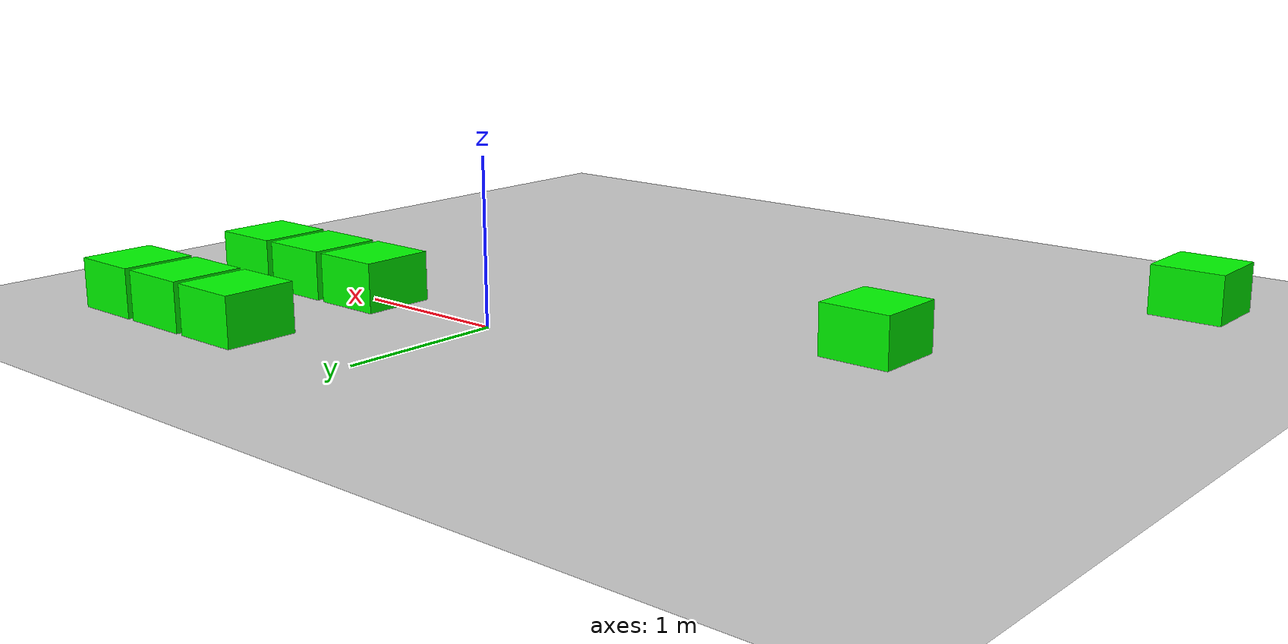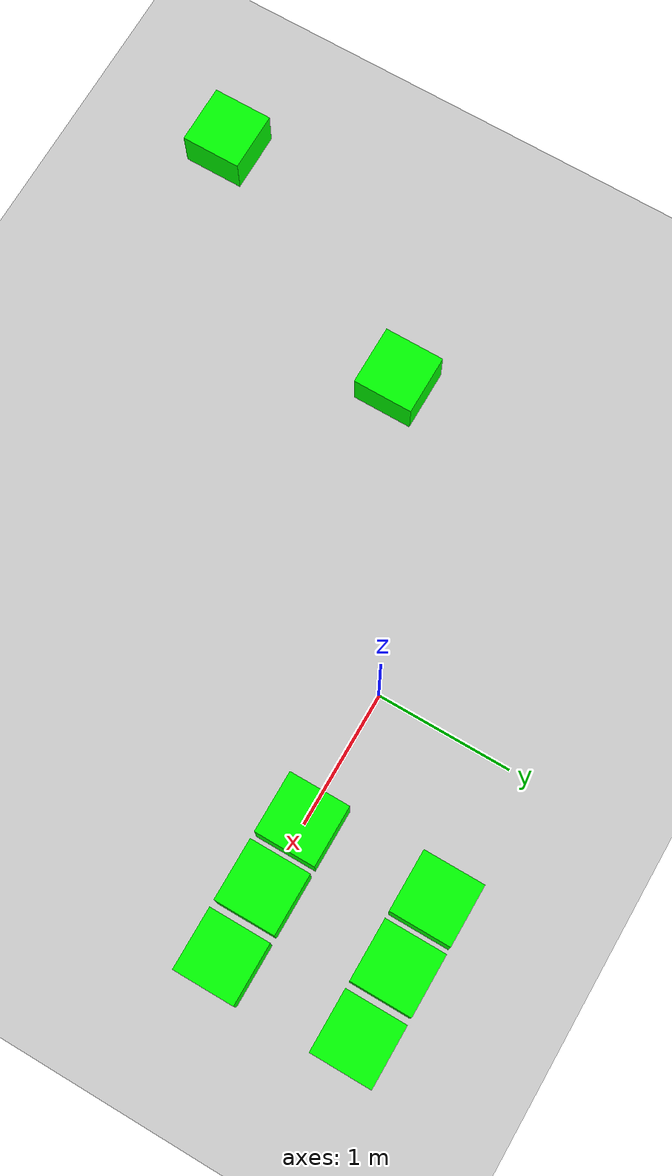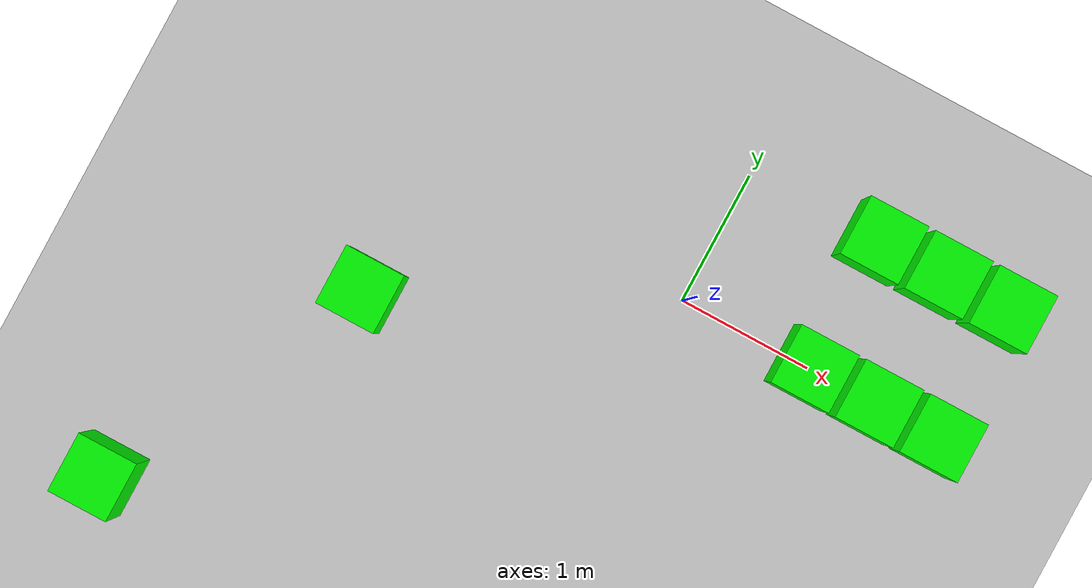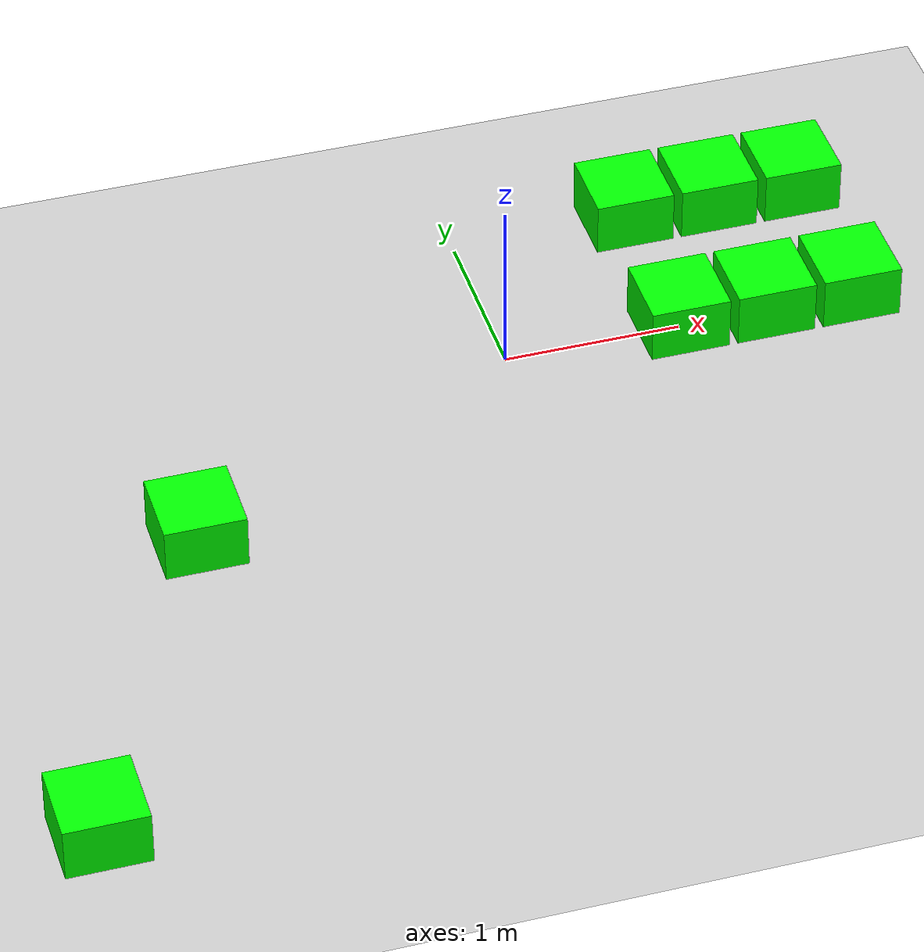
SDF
<?xml version="1.0" ?>

<sdf version="1.6">
  <world name="default">

    <include>
      <uri>model://sun</uri>
    </include>
    <include>
      <uri>model://ground_plane</uri>
    </include>

    <!-- Box Obstacle 1 -->
    <model name="box_obstacle1">
      <static>true</static>
      <pose>1 0 0 0 0 0</pose> <!-- Set the pose (position and orientation) of the box -->
      <link name="link">
        <collision name="collision">
          <geometry>
            <box>
              <size>0.45 0.45 0.6</size> <!-- Set the size of the box -->
            </box>
          </geometry>
        </collision>
        <visual name="visual">
          <geometry>
            <box>
              <size>0.45 0.45 0.6</size> <!-- Set the size of the box -->
            </box>
          </geometry>
          <material>
            <ambient>0 1 0 1</ambient> <!-- Set the ambient color to green (RGBA) -->
            <diffuse>0 1 0 1</diffuse> <!-- Set the diffuse color to green (RGBA) -->
            <specular>0.7 0.7 0.7 1</specular> <!-- Set the specular color to light gray (RGBA) -->
            <emissive>0 0 0 1</emissive> <!-- Set the emissive color to black (RGBA) -->
          </material>
        </visual>
      </link>
    </model>

    <!-- Box Obstacle 2 -->
    <model name="box_obstacle2">
      <static>true</static>
      <pose>1.5 0 0 0 0 0</pose> <!-- Set the pose (position and orientation) of the box -->
      <link name="link">
        <collision name="collision">
          <geometry>
            <box>
              <size>0.45 0.45 0.6</size> <!-- Set the size of the box -->
            </box>
          </geometry>
        </collision>
        <visual name="visual">
          <geometry>
            <box>
              <size>0.45 0.45 0.6</size> <!-- Set the size of the box -->
            </box>
          </geometry>
          <material>
            <ambient>0 1 0 1</ambient> <!-- Set the ambient color to green (RGBA) -->
            <diffuse>0 1 0 1</diffuse> <!-- Set the diffuse color to green (RGBA) -->
            <specular>0.7 0.7 0.7 1</specular> <!-- Set the specular color to light gray (RGBA) -->
            <emissive>0 0 0 1</emissive> <!-- Set the emissive color to black (RGBA) -->
          </material>
        </visual>
      </link>
    </model>

    <!-- Box Obstacle 3 -->
    <model name="box_obstacle3">
      <static>true</static>
      <pose>2 0 0 0 0 0</pose> <!-- Set the pose (position and orientation) of the box -->
      <link name="link">
        <collision name="collision">
          <geometry>
            <box>
              <size>0.45 0.45 0.6</size> <!-- Set the size of the box -->
            </box>
          </geometry>
        </collision>
        <visual name="visual">
          <geometry>
            <box>
              <size>0.45 0.45 0.6</size> <!-- Set the size of the box -->
            </box>
          </geometry>
          <material>
            <ambient>0 1 0 1</ambient> <!-- Set the ambient color to green (RGBA) -->
            <diffuse>0 1 0 1</diffuse> <!-- Set the diffuse color to green (RGBA) -->
            <specular>0.7 0.7 0.7 1</specular> <!-- Set the specular color to light gray (RGBA) -->
            <emissive>0 0 0 1</emissive> <!-- Set the emissive color to black (RGBA) -->
          </material>
        </visual>
      </link>
    </model>

    <!-- Box Obstacle 4 -->
    <model name="box_obstacle4">
      <static>true</static>
      <pose>1 1 0 0 0 0</pose> <!-- Set the pose (position and orientation) of the box -->
      <link name="link">
        <collision name="collision">
          <geometry>
            <box>
              <size>0.45 0.45 0.6</size> <!-- Set the size of the box -->
            </box>
          </geometry>
        </collision>
        <visual name="visual">
          <geometry>
            <box>
              <size>0.45 0.45 0.6</size> <!-- Set the size of the box -->
            </box>
          </geometry>
          <material>
            <ambient>0 1 0 1</ambient> <!-- Set the ambient color to green (RGBA) -->
            <diffuse>0 1 0 1</diffuse> <!-- Set the diffuse color to green (RGBA) -->
            <specular>0.7 0.7 0.7 1</specular> <!-- Set the specular color to light gray (RGBA) -->
            <emissive>0 0 0 1</emissive> <!-- Set the emissive color to black (RGBA) -->
          </material>
        </visual>
      </link>
    </model>

    <!-- Box Obstacle 5 -->
    <model name="box_obstacle5">
      <static>true</static>
      <pose>1.5 1 0 0 0 0</pose> <!-- Set the pose (position and orientation) of the box -->
      <link name="link">
        <collision name="collision">
          <geometry>
            <box>
              <size>0.45 0.45 0.6</size> <!-- Set the size of the box -->
            </box>
          </geometry>
        </collision>
        <visual name="visual">
          <geometry>
            <box>
              <size>0.45 0.45 0.6</size> <!-- Set the size of the box -->
            </box>
          </geometry>
          <material>
            <ambient>0 1 0 1</ambient> <!-- Set the ambient color to green (RGBA) -->
            <diffuse>0 1 0 1</diffuse> <!-- Set the diffuse color to green (RGBA) -->
            <specular>0.7 0.7 0.7 1</specular> <!-- Set the specular color to light gray (RGBA) -->
            <emissive>0 0 0 1</emissive> <!-- Set the emissive color to black (RGBA) -->
          </material>
        </visual>
      </link>
    </model>

    <!-- Box Obstacle 6 -->
    <model name="box_obstacle6">
      <static>true</static>
      <pose>2 1 0 0 0 0</pose> <!-- Set the pose (position and orientation) of the box -->
      <link name="link">
        <collision name="collision">
          <geometry>
            <box>
              <size>0.45 0.45 0.6</size> <!-- Set the size of the box -->
            </box>
          </geometry>
        </collision>
        <visual name="visual">
          <geometry>
            <box>
              <size>0.45 0.45 0.6</size> <!-- Set the size of the box -->
            </box>
          </geometry>
          <material>
            <ambient>0 1 0 1</ambient> <!-- Set the ambient color to green (RGBA) -->
            <diffuse>0 1 0 1</diffuse> <!-- Set the diffuse color to green (RGBA) -->
            <specular>0.7 0.7 0.7 1</specular> <!-- Set the specular color to light gray (RGBA) -->
            <emissive>0 0 0 1</emissive> <!-- Set the emissive color to black (RGBA) -->
          </material>
        </visual>
      </link>
    </model>

    <!-- Box Obstacle 7 -->
    <model name="box_obstacle7">
      <static>true</static>
      <pose>-2 -1 0 0 0 0</pose> <!-- Set the pose (position and orientation) of the box -->
      <link name="link">
        <collision name="collision">
          <geometry>
            <box>
              <size>0.45 0.45 0.6</size> <!-- Set the size of the box -->
            </box>
          </geometry>
        </collision>
        <visual name="visual">
          <geometry>
            <box>
              <size>0.45 0.45 0.6</size> <!-- Set the size of the box -->
            </box>
          </geometry>
          <material>
            <ambient>0 1 0 1</ambient> <!-- Set the ambient color to green (RGBA) -->
            <diffuse>0 1 0 1</diffuse> <!-- Set the diffuse color to green (RGBA) -->
            <specular>0.7 0.7 0.7 1</specular> <!-- Set the specular color to light gray (RGBA) -->
            <emissive>0 0 0 1</emissive> <!-- Set the emissive color to black (RGBA) -->
          </material>
        </visual>
      </link>
    </model>

    <!-- Box Obstacle 8 -->
    <model name="box_obstacle8">
      <static>true</static>
      <pose>-3 -3 0 0 0 0</pose> <!-- Set the pose (position and orientation) of the box -->
      <link name="link">
        <collision name="collision">
          <geometry>
            <box>
              <size>0.45 0.45 0.6</size> <!-- Set the size of the box -->
            </box>
          </geometry>
        </collision>
        <visual name="visual">
          <geometry>
            <box>
              <size>0.45 0.45 0.6</size> <!-- Set the size of the box -->
            </box>
          </geometry>
          <material>
            <ambient>0 1 0 1</ambient> <!-- Set the ambient color to green (RGBA) -->
            <diffuse>0 1 0 1</diffuse> <!-- Set the diffuse color to green (RGBA) -->
            <specular>0.7 0.7 0.7 1</specular> <!-- Set the specular color to light gray (RGBA) -->
            <emissive>0 0 0 1</emissive> <!-- Set the emissive color to black (RGBA) -->
          </material>
        </visual>
      </link>
    </model>

  </world>
</sdf>
